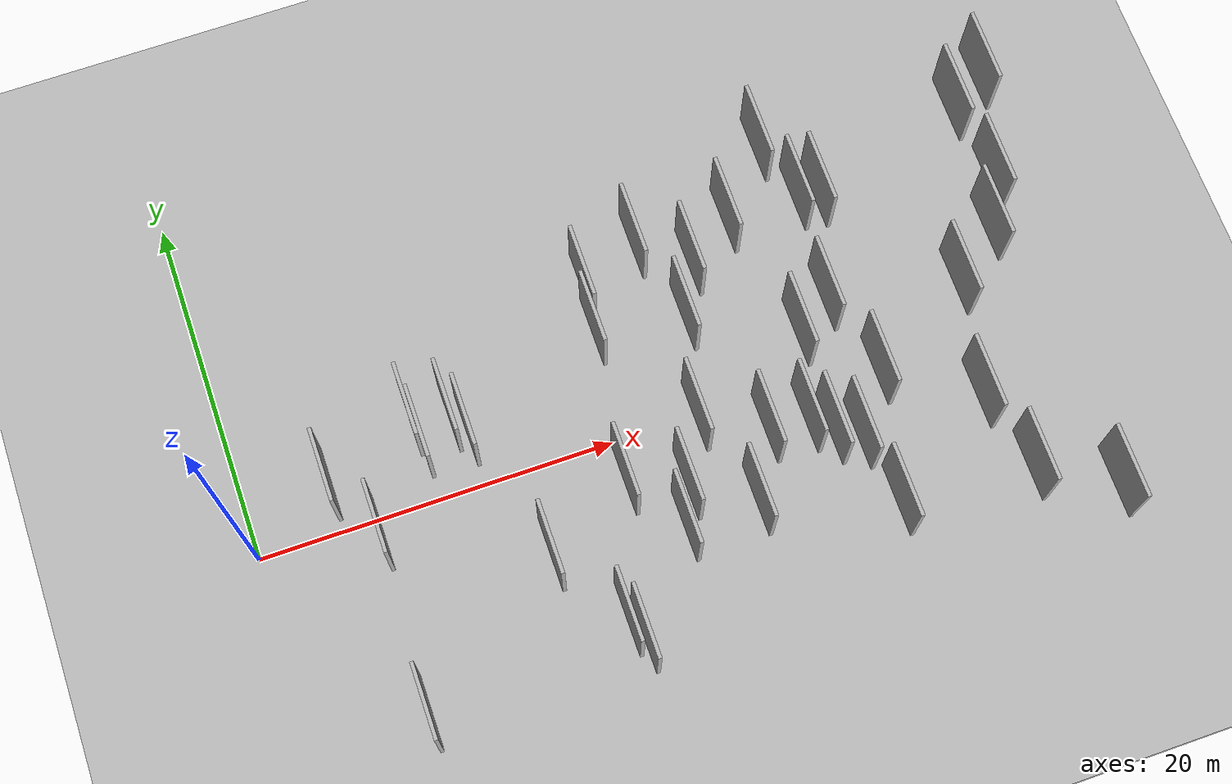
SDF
<?xml version="1.0" encoding="utf-8"?>

<sdf version="1.6">

   <world name="default">

      <gui fullscreen="0">

         <camera name="user_camera">

            <pose>-15 0 4.57585 0 0 0</pose>

            <view_controller>orbit</view_controller>

         </camera>

      </gui>

      <scene>

         <sky>

           <clouds>

             <speed>12</speed>

           </clouds>

         </sky>

         <ambient>0.4 0.4 0.4 1</ambient>

         <background>0.7 0.7 0.7 1</background>

         <shadows>1</shadows>

      </scene>

      <gravity>0 0 -9.8066</gravity>

      <magnetic_field>6e-06 2.3e-05 -4.2e-05</magnetic_field>

      <physics default="0" name="default_physics" type="ode">

         <ode>

            <solver>

               <type>quick</type>

               <iters>10</iters>

               <sor>1.0</sor>

               <use_dynamic_moi_rescaling>0</use_dynamic_moi_rescaling>

            </solver>

            <constraints>

               <cfm>0</cfm>

               <erp>0.2</erp>

               <contact_max_correcting_vel>100</contact_max_correcting_vel>

               <contact_surface_layer>0.001</contact_surface_layer>

            </constraints>

         </ode>

         <max_step_size>0.004</max_step_size>

         <real_time_factor>1</real_time_factor>

         <real_time_update_rate>250</real_time_update_rate>

      </physics>

      <light name="sun" type="directional">

         <cast_shadows>1</cast_shadows>

         <pose>0 0 10 0 0 0</pose>

         <diffuse>0.8 0.8 0.8 1</diffuse>

         <specular>0.2 0.2 0.2 1</specular>

         <attenuation>

            <range>1000</range>

            <constant>0.9</constant>

            <linear>0.01</linear>

            <quadratic>0.001</quadratic>

         </attenuation>

         <direction>-0.5 0.1 -0.9</direction>

      </light>

      <include>

         <name>ground_plane_1</name>

         <uri>model://HANNAS_ground_plane</uri>

         <pose>0 0 0  0 0 0</pose>

      </include>

      <include>

         <name>ground_plane_2</name>

         <uri>model://HANNAS_ground_plane</uri>

         <pose>100 0 0  0 0 0</pose>

      </include>

      <model name="HANNAS_wall_1">

         <static>1</static>

         <pose frame="">17.2361 -10.4569 5.0 0.000000 0.000000 1.570796</pose>

         <link name="link">

            <pose frame="">0 0 2.00 0 0 0</pose>

            <collision name="collision">

               <geometry>

                  <box>

                     <size>4.00 0.2 4.00</size>

                  </box>

               </geometry>

               <max_contacts>10</max_contacts>

               <surface>

                  <contact>

                     <ode/>

                  </contact>

                  <bounce/>

                  <friction>

                     <torsional>

                        <ode/>

                     </torsional>

                     <ode/>

                  </friction>

               </surface>

            </collision>

            <visual name="visual">

               <cast_shadows>0</cast_shadows>

               <geometry>

                  <box>

                     <size>4.00 0.2 4.00</size>

                  </box>

               </geometry>

               <material>

                  <script>

                     <uri>model://HANNAS_wall/materials/scripts</uri>

                     <uri>model://HANNAS_wall/materials/textures</uri>

                     <name>vrc/HANNAS_wall</name>

                  </script>

               </material>

            </visual>

            <self_collide>0</self_collide>

            <enable_wind>0</enable_wind>

            <kinematic>0</kinematic>

         </link>

      </model>

      <model name="HANNAS_wall_2">

         <static>1</static>

         <pose frame="">6.7649 -2.1725 5.0 0.000000 0.000000 1.570796</pose>

         <link name="link">

            <pose frame="">0 0 2.00 0 0 0</pose>

            <collision name="collision">

               <geometry>

                  <box>

                     <size>4.00 0.2 4.00</size>

                  </box>

               </geometry>

               <max_contacts>10</max_contacts>

               <surface>

                  <contact>

                     <ode/>

                  </contact>

                  <bounce/>

                  <friction>

                     <torsional>

                        <ode/>

                     </torsional>

                     <ode/>

                  </friction>

               </surface>

            </collision>

            <visual name="visual">

               <cast_shadows>0</cast_shadows>

               <geometry>

                  <box>

                     <size>4.00 0.2 4.00</size>

                  </box>

               </geometry>

               <material>

                  <script>

                     <uri>model://HANNAS_wall/materials/scripts</uri>

                     <uri>model://HANNAS_wall/materials/textures</uri>

                     <name>vrc/HANNAS_wall</name>

                  </script>

               </material>

            </visual>

            <self_collide>0</self_collide>

            <enable_wind>0</enable_wind>

            <kinematic>0</kinematic>

         </link>

      </model>

      <model name="HANNAS_wall_3">

         <static>1</static>

         <pose frame="">34.4605 8.2708 5.0 0.000000 0.000000 1.570796</pose>

         <link name="link">

            <pose frame="">0 0 2.00 0 0 0</pose>

            <collision name="collision">

               <geometry>

                  <box>

                     <size>4.00 0.2 4.00</size>

                  </box>

               </geometry>

               <max_contacts>10</max_contacts>

               <surface>

                  <contact>

                     <ode/>

                  </contact>

                  <bounce/>

                  <friction>

                     <torsional>

                        <ode/>

                     </torsional>

                     <ode/>

                  </friction>

               </surface>

            </collision>

            <visual name="visual">

               <cast_shadows>0</cast_shadows>

               <geometry>

                  <box>

                     <size>4.00 0.2 4.00</size>

                  </box>

               </geometry>

               <material>

                  <script>

                     <uri>model://HANNAS_wall/materials/scripts</uri>

                     <uri>model://HANNAS_wall/materials/textures</uri>

                     <name>vrc/HANNAS_wall</name>

                  </script>

               </material>

            </visual>

            <self_collide>0</self_collide>

            <enable_wind>0</enable_wind>

            <kinematic>0</kinematic>

         </link>

      </model>

      <model name="HANNAS_wall_4">

         <static>1</static>

         <pose frame="">20.5544 4.7622 5.0 0.000000 0.000000 1.570796</pose>

         <link name="link">

            <pose frame="">0 0 2.00 0 0 0</pose>

            <collision name="collision">

               <geometry>

                  <box>

                     <size>4.00 0.2 4.00</size>

                  </box>

               </geometry>

               <max_contacts>10</max_contacts>

               <surface>

                  <contact>

                     <ode/>

                  </contact>

                  <bounce/>

                  <friction>

                     <torsional>

                        <ode/>

                     </torsional>

                     <ode/>

                  </friction>

               </surface>

            </collision>

            <visual name="visual">

               <cast_shadows>0</cast_shadows>

               <geometry>

                  <box>

                     <size>4.00 0.2 4.00</size>

                  </box>

               </geometry>

               <material>

                  <script>

                     <uri>model://HANNAS_wall/materials/scripts</uri>

                     <uri>model://HANNAS_wall/materials/textures</uri>

                     <name>vrc/HANNAS_wall</name>

                  </script>

               </material>

            </visual>

            <self_collide>0</self_collide>

            <enable_wind>0</enable_wind>

            <kinematic>0</kinematic>

         </link>

      </model>

      <model name="HANNAS_wall_5">

         <static>1</static>

         <pose frame="">21.5974 -6.7855 5.0 0.000000 0.000000 1.570796</pose>

         <link name="link">

            <pose frame="">0 0 2.00 0 0 0</pose>

            <collision name="collision">

               <geometry>

                  <box>

                     <size>4.00 0.2 4.00</size>

                  </box>

               </geometry>

               <max_contacts>10</max_contacts>

               <surface>

                  <contact>

                     <ode/>

                  </contact>

                  <bounce/>

                  <friction>

                     <torsional>

                        <ode/>

                     </torsional>

                     <ode/>

                  </friction>

               </surface>

            </collision>

            <visual name="visual">

               <cast_shadows>0</cast_shadows>

               <geometry>

                  <box>

                     <size>4.00 0.2 4.00</size>

                  </box>

               </geometry>

               <material>

                  <script>

                     <uri>model://HANNAS_wall/materials/scripts</uri>

                     <uri>model://HANNAS_wall/materials/textures</uri>

                     <name>vrc/HANNAS_wall</name>

                  </script>

               </material>

            </visual>

            <self_collide>0</self_collide>

            <enable_wind>0</enable_wind>

            <kinematic>0</kinematic>

         </link>

      </model>

      <model name="HANNAS_wall_6">

         <static>1</static>

         <pose frame="">33.9064 -2.1469 5.0 0.000000 0.000000 1.570796</pose>

         <link name="link">

            <pose frame="">0 0 2.00 0 0 0</pose>

            <collision name="collision">

               <geometry>

                  <box>

                     <size>4.00 0.2 4.00</size>

                  </box>

               </geometry>

               <max_contacts>10</max_contacts>

               <surface>

                  <contact>

                     <ode/>

                  </contact>

                  <bounce/>

                  <friction>

                     <torsional>

                        <ode/>

                     </torsional>

                     <ode/>

                  </friction>

               </surface>

            </collision>

            <visual name="visual">

               <cast_shadows>0</cast_shadows>

               <geometry>

                  <box>

                     <size>4.00 0.2 4.00</size>

                  </box>

               </geometry>

               <material>

                  <script>

                     <uri>model://HANNAS_wall/materials/scripts</uri>

                     <uri>model://HANNAS_wall/materials/textures</uri>

                     <name>vrc/HANNAS_wall</name>

                  </script>

               </material>

            </visual>

            <self_collide>0</self_collide>

            <enable_wind>0</enable_wind>

            <kinematic>0</kinematic>

         </link>

      </model>

      <model name="HANNAS_wall_7">

         <static>1</static>

         <pose frame="">42.4745 3.4765 5.0 0.000000 0.000000 1.570796</pose>

         <link name="link">

            <pose frame="">0 0 2.00 0 0 0</pose>

            <collision name="collision">

               <geometry>

                  <box>

                     <size>4.00 0.2 4.00</size>

                  </box>

               </geometry>

               <max_contacts>10</max_contacts>

               <surface>

                  <contact>

                     <ode/>

                  </contact>

                  <bounce/>

                  <friction>

                     <torsional>

                        <ode/>

                     </torsional>

                     <ode/>

                  </friction>

               </surface>

            </collision>

            <visual name="visual">

               <cast_shadows>0</cast_shadows>

               <geometry>

                  <box>

                     <size>4.00 0.2 4.00</size>

                  </box>

               </geometry>

               <material>

                  <script>

                     <uri>model://HANNAS_wall/materials/scripts</uri>

                     <uri>model://HANNAS_wall/materials/textures</uri>

                     <name>vrc/HANNAS_wall</name>

                  </script>

               </material>

            </visual>

            <self_collide>0</self_collide>

            <enable_wind>0</enable_wind>

            <kinematic>0</kinematic>

         </link>

      </model>

      <model name="HANNAS_wall_8">

         <static>1</static>

         <pose frame="">19.4796 -3.4679 5.0 0.000000 0.000000 1.570796</pose>

         <link name="link">

            <pose frame="">0 0 2.00 0 0 0</pose>

            <collision name="collision">

               <geometry>

                  <box>

                     <size>4.00 0.2 4.00</size>

                  </box>

               </geometry>

               <max_contacts>10</max_contacts>

               <surface>

                  <contact>

                     <ode/>

                  </contact>

                  <bounce/>

                  <friction>

                     <torsional>

                        <ode/>

                     </torsional>

                     <ode/>

                  </friction>

               </surface>

            </collision>

            <visual name="visual">

               <cast_shadows>0</cast_shadows>

               <geometry>

                  <box>

                     <size>4.00 0.2 4.00</size>

                  </box>

               </geometry>

               <material>

                  <script>

                     <uri>model://HANNAS_wall/materials/scripts</uri>

                     <uri>model://HANNAS_wall/materials/textures</uri>

                     <name>vrc/HANNAS_wall</name>

                  </script>

               </material>

            </visual>

            <self_collide>0</self_collide>

            <enable_wind>0</enable_wind>

            <kinematic>0</kinematic>

         </link>

      </model>

      <model name="HANNAS_wall_9">

         <static>1</static>

         <pose frame="">10.1993 1.8359 5.0 0.000000 0.000000 1.570796</pose>

         <link name="link">

            <pose frame="">0 0 2.00 0 0 0</pose>

            <collision name="collision">

               <geometry>

                  <box>

                     <size>4.00 0.2 4.00</size>

                  </box>

               </geometry>

               <max_contacts>10</max_contacts>

               <surface>

                  <contact>

                     <ode/>

                  </contact>

                  <bounce/>

                  <friction>

                     <torsional>

                        <ode/>

                     </torsional>

                     <ode/>

                  </friction>

               </surface>

            </collision>

            <visual name="visual">

               <cast_shadows>0</cast_shadows>

               <geometry>

                  <box>

                     <size>4.00 0.2 4.00</size>

                  </box>

               </geometry>

               <material>

                  <script>

                     <uri>model://HANNAS_wall/materials/scripts</uri>

                     <uri>model://HANNAS_wall/materials/textures</uri>

                     <name>vrc/HANNAS_wall</name>

                  </script>

               </material>

            </visual>

            <self_collide>0</self_collide>

            <enable_wind>0</enable_wind>

            <kinematic>0</kinematic>

         </link>

      </model>

      <model name="HANNAS_wall_10">

         <static>1</static>

         <pose frame="">32.7264 2.5821 5.0 0.000000 0.000000 1.570796</pose>

         <link name="link">

            <pose frame="">0 0 2.00 0 0 0</pose>

            <collision name="collision">

               <geometry>

                  <box>

                     <size>4.00 0.2 4.00</size>

                  </box>

               </geometry>

               <max_contacts>10</max_contacts>

               <surface>

                  <contact>

                     <ode/>

                  </contact>

                  <bounce/>

                  <friction>

                     <torsional>

                        <ode/>

                     </torsional>

                     <ode/>

                  </friction>

               </surface>

            </collision>

            <visual name="visual">

               <cast_shadows>0</cast_shadows>

               <geometry>

                  <box>

                     <size>4.00 0.2 4.00</size>

                  </box>

               </geometry>

               <material>

                  <script>

                     <uri>model://HANNAS_wall/materials/scripts</uri>

                     <uri>model://HANNAS_wall/materials/textures</uri>

                     <name>vrc/HANNAS_wall</name>

                  </script>

               </material>

            </visual>

            <self_collide>0</self_collide>

            <enable_wind>0</enable_wind>

            <kinematic>0</kinematic>

         </link>

      </model>

      <model name="HANNAS_wall_11">

         <static>1</static>

         <pose frame="">43.6967 6.1775 5.0 0.000000 0.000000 1.570796</pose>

         <link name="link">

            <pose frame="">0 0 2.00 0 0 0</pose>

            <collision name="collision">

               <geometry>

                  <box>

                     <size>4.00 0.2 4.00</size>

                  </box>

               </geometry>

               <max_contacts>10</max_contacts>

               <surface>

                  <contact>

                     <ode/>

                  </contact>

                  <bounce/>

                  <friction>

                     <torsional>

                        <ode/>

                     </torsional>

                     <ode/>

                  </friction>

               </surface>

            </collision>

            <visual name="visual">

               <cast_shadows>0</cast_shadows>

               <geometry>

                  <box>

                     <size>4.00 0.2 4.00</size>

                  </box>

               </geometry>

               <material>

                  <script>

                     <uri>model://HANNAS_wall/materials/scripts</uri>

                     <uri>model://HANNAS_wall/materials/textures</uri>

                     <name>vrc/HANNAS_wall</name>

                  </script>

               </material>

            </visual>

            <self_collide>0</self_collide>

            <enable_wind>0</enable_wind>

            <kinematic>0</kinematic>

         </link>

      </model>

      <model name="HANNAS_wall_12">

         <static>1</static>

         <pose frame="">11.9559 2.7120 5.0 0.000000 0.000000 1.570796</pose>

         <link name="link">

            <pose frame="">0 0 2.00 0 0 0</pose>

            <collision name="collision">

               <geometry>

                  <box>

                     <size>4.00 0.2 4.00</size>

                  </box>

               </geometry>

               <max_contacts>10</max_contacts>

               <surface>

                  <contact>

                     <ode/>

                  </contact>

                  <bounce/>

                  <friction>

                     <torsional>

                        <ode/>

                     </torsional>

                     <ode/>

                  </friction>

               </surface>

            </collision>

            <visual name="visual">

               <cast_shadows>0</cast_shadows>

               <geometry>

                  <box>

                     <size>4.00 0.2 4.00</size>

                  </box>

               </geometry>

               <material>

                  <script>

                     <uri>model://HANNAS_wall/materials/scripts</uri>

                     <uri>model://HANNAS_wall/materials/textures</uri>

                     <name>vrc/HANNAS_wall</name>

                  </script>

               </material>

            </visual>

            <self_collide>0</self_collide>

            <enable_wind>0</enable_wind>

            <kinematic>0</kinematic>

         </link>

      </model>

      <model name="HANNAS_wall_13">

         <static>1</static>

         <pose frame="">33.3081 8.4916 5.0 0.000000 0.000000 1.570796</pose>

         <link name="link">

            <pose frame="">0 0 2.00 0 0 0</pose>

            <collision name="collision">

               <geometry>

                  <box>

                     <size>4.00 0.2 4.00</size>

                  </box>

               </geometry>

               <max_contacts>10</max_contacts>

               <surface>

                  <contact>

                     <ode/>

                  </contact>

                  <bounce/>

                  <friction>

                     <torsional>

                        <ode/>

                     </torsional>

                     <ode/>

                  </friction>

               </surface>

            </collision>

            <visual name="visual">

               <cast_shadows>0</cast_shadows>

               <geometry>

                  <box>

                     <size>4.00 0.2 4.00</size>

                  </box>

               </geometry>

               <material>

                  <script>

                     <uri>model://HANNAS_wall/materials/scripts</uri>

                     <uri>model://HANNAS_wall/materials/textures</uri>

                     <name>vrc/HANNAS_wall</name>

                  </script>

               </material>

            </visual>

            <self_collide>0</self_collide>

            <enable_wind>0</enable_wind>

            <kinematic>0</kinematic>

         </link>

      </model>

      <model name="HANNAS_wall_14">

         <static>1</static>

         <pose frame="">24.1334 8.6971 5.0 0.000000 0.000000 1.570796</pose>

         <link name="link">

            <pose frame="">0 0 2.00 0 0 0</pose>

            <collision name="collision">

               <geometry>

                  <box>

                     <size>4.00 0.2 4.00</size>

                  </box>

               </geometry>

               <max_contacts>10</max_contacts>

               <surface>

                  <contact>

                     <ode/>

                  </contact>

                  <bounce/>

                  <friction>

                     <torsional>

                        <ode/>

                     </torsional>

                     <ode/>

                  </friction>

               </surface>

            </collision>

            <visual name="visual">

               <cast_shadows>0</cast_shadows>

               <geometry>

                  <box>

                     <size>4.00 0.2 4.00</size>

                  </box>

               </geometry>

               <material>

                  <script>

                     <uri>model://HANNAS_wall/materials/scripts</uri>

                     <uri>model://HANNAS_wall/materials/textures</uri>

                     <name>vrc/HANNAS_wall</name>

                  </script>

               </material>

            </visual>

            <self_collide>0</self_collide>

            <enable_wind>0</enable_wind>

            <kinematic>0</kinematic>

         </link>

      </model>

      <model name="HANNAS_wall_15">

         <static>1</static>

         <pose frame="">32.3767 -9.0726 5.0 0.000000 0.000000 1.570796</pose>

         <link name="link">

            <pose frame="">0 0 2.00 0 0 0</pose>

            <collision name="collision">

               <geometry>

                  <box>

                     <size>4.00 0.2 4.00</size>

                  </box>

               </geometry>

               <max_contacts>10</max_contacts>

               <surface>

                  <contact>

                     <ode/>

                  </contact>

                  <bounce/>

                  <friction>

                     <torsional>

                        <ode/>

                     </torsional>

                     <ode/>

                  </friction>

               </surface>

            </collision>

            <visual name="visual">

               <cast_shadows>0</cast_shadows>

               <geometry>

                  <box>

                     <size>4.00 0.2 4.00</size>

                  </box>

               </geometry>

               <material>

                  <script>

                     <uri>model://HANNAS_wall/materials/scripts</uri>

                     <uri>model://HANNAS_wall/materials/textures</uri>

                     <name>vrc/HANNAS_wall</name>

                  </script>

               </material>

            </visual>

            <self_collide>0</self_collide>

            <enable_wind>0</enable_wind>

            <kinematic>0</kinematic>

         </link>

      </model>

      <model name="HANNAS_wall_16">

         <static>1</static>

         <pose frame="">43.3508 -11.8342 5.0 0.000000 0.000000 1.570796</pose>

         <link name="link">

            <pose frame="">0 0 2.00 0 0 0</pose>

            <collision name="collision">

               <geometry>

                  <box>

                     <size>4.00 0.2 4.00</size>

                  </box>

               </geometry>

               <max_contacts>10</max_contacts>

               <surface>

                  <contact>

                     <ode/>

                  </contact>

                  <bounce/>

                  <friction>

                     <torsional>

                        <ode/>

                     </torsional>

                     <ode/>

                  </friction>

               </surface>

            </collision>

            <visual name="visual">

               <cast_shadows>0</cast_shadows>

               <geometry>

                  <box>

                     <size>4.00 0.2 4.00</size>

                  </box>

               </geometry>

               <material>

                  <script>

                     <uri>model://HANNAS_wall/materials/scripts</uri>

                     <uri>model://HANNAS_wall/materials/textures</uri>

                     <name>vrc/HANNAS_wall</name>

                  </script>

               </material>

            </visual>

            <self_collide>0</self_collide>

            <enable_wind>0</enable_wind>

            <kinematic>0</kinematic>

         </link>

      </model>

      <model name="HANNAS_wall_17">

         <static>1</static>

         <pose frame="">9.9884 3.1541 5.0 0.000000 0.000000 1.570796</pose>

         <link name="link">

            <pose frame="">0 0 2.00 0 0 0</pose>

            <collision name="collision">

               <geometry>

                  <box>

                     <size>4.00 0.2 4.00</size>

                  </box>

               </geometry>

               <max_contacts>10</max_contacts>

               <surface>

                  <contact>

                     <ode/>

                  </contact>

                  <bounce/>

                  <friction>

                     <torsional>

                        <ode/>

                     </torsional>

                     <ode/>

                  </friction>

               </surface>

            </collision>

            <visual name="visual">

               <cast_shadows>0</cast_shadows>

               <geometry>

                  <box>

                     <size>4.00 0.2 4.00</size>

                  </box>

               </geometry>

               <material>

                  <script>

                     <uri>model://HANNAS_wall/materials/scripts</uri>

                     <uri>model://HANNAS_wall/materials/textures</uri>

                     <name>vrc/HANNAS_wall</name>

                  </script>

               </material>

            </visual>

            <self_collide>0</self_collide>

            <enable_wind>0</enable_wind>

            <kinematic>0</kinematic>

         </link>

      </model>

      <model name="HANNAS_wall_18">

         <static>1</static>

         <pose frame="">26.6652 6.7905 5.0 0.000000 0.000000 1.570796</pose>

         <link name="link">

            <pose frame="">0 0 2.00 0 0 0</pose>

            <collision name="collision">

               <geometry>

                  <box>

                     <size>4.00 0.2 4.00</size>

                  </box>

               </geometry>

               <max_contacts>10</max_contacts>

               <surface>

                  <contact>

                     <ode/>

                  </contact>

                  <bounce/>

                  <friction>

                     <torsional>

                        <ode/>

                     </torsional>

                     <ode/>

                  </friction>

               </surface>

            </collision>

            <visual name="visual">

               <cast_shadows>0</cast_shadows>

               <geometry>

                  <box>

                     <size>4.00 0.2 4.00</size>

                  </box>

               </geometry>

               <material>

                  <script>

                     <uri>model://HANNAS_wall/materials/scripts</uri>

                     <uri>model://HANNAS_wall/materials/textures</uri>

                     <name>vrc/HANNAS_wall</name>

                  </script>

               </material>

            </visual>

            <self_collide>0</self_collide>

            <enable_wind>0</enable_wind>

            <kinematic>0</kinematic>

         </link>

      </model>

      <model name="HANNAS_wall_19">

         <static>1</static>

         <pose frame="">14.6474 -6.0128 5.0 0.000000 0.000000 1.570796</pose>

         <link name="link">

            <pose frame="">0 0 2.00 0 0 0</pose>

            <collision name="collision">

               <geometry>

                  <box>

                     <size>4.00 0.2 4.00</size>

                  </box>

               </geometry>

               <max_contacts>10</max_contacts>

               <surface>

                  <contact>

                     <ode/>

                  </contact>

                  <bounce/>

                  <friction>

                     <torsional>

                        <ode/>

                     </torsional>

                     <ode/>

                  </friction>

               </surface>

            </collision>

            <visual name="visual">

               <cast_shadows>0</cast_shadows>

               <geometry>

                  <box>

                     <size>4.00 0.2 4.00</size>

                  </box>

               </geometry>

               <material>

                  <script>

                     <uri>model://HANNAS_wall/materials/scripts</uri>

                     <uri>model://HANNAS_wall/materials/textures</uri>

                     <name>vrc/HANNAS_wall</name>

                  </script>

               </material>

            </visual>

            <self_collide>0</self_collide>

            <enable_wind>0</enable_wind>

            <kinematic>0</kinematic>

         </link>

      </model>

      <model name="HANNAS_wall_20">

         <static>1</static>

         <pose frame="">12.5976 1.6681 5.0 0.000000 0.000000 1.570796</pose>

         <link name="link">

            <pose frame="">0 0 2.00 0 0 0</pose>

            <collision name="collision">

               <geometry>

                  <box>

                     <size>4.00 0.2 4.00</size>

                  </box>

               </geometry>

               <max_contacts>10</max_contacts>

               <surface>

                  <contact>

                     <ode/>

                  </contact>

                  <bounce/>

                  <friction>

                     <torsional>

                        <ode/>

                     </torsional>

                     <ode/>

                  </friction>

               </surface>

            </collision>

            <visual name="visual">

               <cast_shadows>0</cast_shadows>

               <geometry>

                  <box>

                     <size>4.00 0.2 4.00</size>

                  </box>

               </geometry>

               <material>

                  <script>

                     <uri>model://HANNAS_wall/materials/scripts</uri>

                     <uri>model://HANNAS_wall/materials/textures</uri>

                     <name>vrc/HANNAS_wall</name>

                  </script>

               </material>

            </visual>

            <self_collide>0</self_collide>

            <enable_wind>0</enable_wind>

            <kinematic>0</kinematic>

         </link>

      </model>

      <model name="HANNAS_wall_21">

         <static>1</static>

         <pose frame="">31.7583 -5.1412 5.0 0.000000 0.000000 1.570796</pose>

         <link name="link">

            <pose frame="">0 0 2.00 0 0 0</pose>

            <collision name="collision">

               <geometry>

                  <box>

                     <size>4.00 0.2 4.00</size>

                  </box>

               </geometry>

               <max_contacts>10</max_contacts>

               <surface>

                  <contact>

                     <ode/>

                  </contact>

                  <bounce/>

                  <friction>

                     <torsional>

                        <ode/>

                     </torsional>

                     <ode/>

                  </friction>

               </surface>

            </collision>

            <visual name="visual">

               <cast_shadows>0</cast_shadows>

               <geometry>

                  <box>

                     <size>4.00 0.2 4.00</size>

                  </box>

               </geometry>

               <material>

                  <script>

                     <uri>model://HANNAS_wall/materials/scripts</uri>

                     <uri>model://HANNAS_wall/materials/textures</uri>

                     <name>vrc/HANNAS_wall</name>

                  </script>

               </material>

            </visual>

            <self_collide>0</self_collide>

            <enable_wind>0</enable_wind>

            <kinematic>0</kinematic>

         </link>

      </model>

      <model name="HANNAS_wall_22">

         <static>1</static>

         <pose frame="">25.5442 -6.7120 5.0 0.000000 0.000000 1.570796</pose>

         <link name="link">

            <pose frame="">0 0 2.00 0 0 0</pose>

            <collision name="collision">

               <geometry>

                  <box>

                     <size>4.00 0.2 4.00</size>

                  </box>

               </geometry>

               <max_contacts>10</max_contacts>

               <surface>

                  <contact>

                     <ode/>

                  </contact>

                  <bounce/>

                  <friction>

                     <torsional>

                        <ode/>

                     </torsional>

                     <ode/>

                  </friction>

               </surface>

            </collision>

            <visual name="visual">

               <cast_shadows>0</cast_shadows>

               <geometry>

                  <box>

                     <size>4.00 0.2 4.00</size>

                  </box>

               </geometry>

               <material>

                  <script>

                     <uri>model://HANNAS_wall/materials/scripts</uri>

                     <uri>model://HANNAS_wall/materials/textures</uri>

                     <name>vrc/HANNAS_wall</name>

                  </script>

               </material>

            </visual>

            <self_collide>0</self_collide>

            <enable_wind>0</enable_wind>

            <kinematic>0</kinematic>

         </link>

      </model>

      <model name="HANNAS_wall_23">

         <static>1</static>

         <pose frame="">27.3213 -3.2450 5.0 0.000000 0.000000 1.570796</pose>

         <link name="link">

            <pose frame="">0 0 2.00 0 0 0</pose>

            <collision name="collision">

               <geometry>

                  <box>

                     <size>4.00 0.2 4.00</size>

                  </box>

               </geometry>

               <max_contacts>10</max_contacts>

               <surface>

                  <contact>

                     <ode/>

                  </contact>

                  <bounce/>

                  <friction>

                     <torsional>

                        <ode/>

                     </torsional>

                     <ode/>

                  </friction>

               </surface>

            </collision>

            <visual name="visual">

               <cast_shadows>0</cast_shadows>

               <geometry>

                  <box>

                     <size>4.00 0.2 4.00</size>

                  </box>

               </geometry>

               <material>

                  <script>

                     <uri>model://HANNAS_wall/materials/scripts</uri>

                     <uri>model://HANNAS_wall/materials/textures</uri>

                     <name>vrc/HANNAS_wall</name>

                  </script>

               </material>

            </visual>

            <self_collide>0</self_collide>

            <enable_wind>0</enable_wind>

            <kinematic>0</kinematic>

         </link>

      </model>

      <model name="HANNAS_wall_24">

         <static>1</static>

         <pose frame="">24.0750 -1.4555 5.0 0.000000 0.000000 1.570796</pose>

         <link name="link">

            <pose frame="">0 0 2.00 0 0 0</pose>

            <collision name="collision">

               <geometry>

                  <box>

                     <size>4.00 0.2 4.00</size>

                  </box>

               </geometry>

               <max_contacts>10</max_contacts>

               <surface>

                  <contact>

                     <ode/>

                  </contact>

                  <bounce/>

                  <friction>

                     <torsional>

                        <ode/>

                     </torsional>

                     <ode/>

                  </friction>

               </surface>

            </collision>

            <visual name="visual">

               <cast_shadows>0</cast_shadows>

               <geometry>

                  <box>

                     <size>4.00 0.2 4.00</size>

                  </box>

               </geometry>

               <material>

                  <script>

                     <uri>model://HANNAS_wall/materials/scripts</uri>

                     <uri>model://HANNAS_wall/materials/textures</uri>

                     <name>vrc/HANNAS_wall</name>

                  </script>

               </material>

            </visual>

            <self_collide>0</self_collide>

            <enable_wind>0</enable_wind>

            <kinematic>0</kinematic>

         </link>

      </model>

      <model name="HANNAS_wall_25">

         <static>1</static>

         <pose frame="">43.1770 10.6793 5.0 0.000000 0.000000 1.570796</pose>

         <link name="link">

            <pose frame="">0 0 2.00 0 0 0</pose>

            <collision name="collision">

               <geometry>

                  <box>

                     <size>4.00 0.2 4.00</size>

                  </box>

               </geometry>

               <max_contacts>10</max_contacts>

               <surface>

                  <contact>

                     <ode/>

                  </contact>

                  <bounce/>

                  <friction>

                     <torsional>

                        <ode/>

                     </torsional>

                     <ode/>

                  </friction>

               </surface>

            </collision>

            <visual name="visual">

               <cast_shadows>0</cast_shadows>

               <geometry>

                  <box>

                     <size>4.00 0.2 4.00</size>

                  </box>

               </geometry>

               <material>

                  <script>

                     <uri>model://HANNAS_wall/materials/scripts</uri>

                     <uri>model://HANNAS_wall/materials/textures</uri>

                     <name>vrc/HANNAS_wall</name>

                  </script>

               </material>

            </visual>

            <self_collide>0</self_collide>

            <enable_wind>0</enable_wind>

            <kinematic>0</kinematic>

         </link>

      </model>

      <model name="HANNAS_wall_26">

         <static>1</static>

         <pose frame="">39.5034 -9.5639 5.0 0.000000 0.000000 1.570796</pose>

         <link name="link">

            <pose frame="">0 0 2.00 0 0 0</pose>

            <collision name="collision">

               <geometry>

                  <box>

                     <size>4.00 0.2 4.00</size>

                  </box>

               </geometry>

               <max_contacts>10</max_contacts>

               <surface>

                  <contact>

                     <ode/>

                  </contact>

                  <bounce/>

                  <friction>

                     <torsional>

                        <ode/>

                     </torsional>

                     <ode/>

                  </friction>

               </surface>

            </collision>

            <visual name="visual">

               <cast_shadows>0</cast_shadows>

               <geometry>

                  <box>

                     <size>4.00 0.2 4.00</size>

                  </box>

               </geometry>

               <material>

                  <script>

                     <uri>model://HANNAS_wall/materials/scripts</uri>

                     <uri>model://HANNAS_wall/materials/textures</uri>

                     <name>vrc/HANNAS_wall</name>

                  </script>

               </material>

            </visual>

            <self_collide>0</self_collide>

            <enable_wind>0</enable_wind>

            <kinematic>0</kinematic>

         </link>

      </model>

      <model name="HANNAS_wall_27">

         <static>1</static>

         <pose frame="">38.4764 -5.0982 5.0 0.000000 0.000000 1.570796</pose>

         <link name="link">

            <pose frame="">0 0 2.00 0 0 0</pose>

            <collision name="collision">

               <geometry>

                  <box>

                     <size>4.00 0.2 4.00</size>

                  </box>

               </geometry>

               <max_contacts>10</max_contacts>

               <surface>

                  <contact>

                     <ode/>

                  </contact>

                  <bounce/>

                  <friction>

                     <torsional>

                        <ode/>

                     </torsional>

                     <ode/>

                  </friction>

               </surface>

            </collision>

            <visual name="visual">

               <cast_shadows>0</cast_shadows>

               <geometry>

                  <box>

                     <size>4.00 0.2 4.00</size>

                  </box>

               </geometry>

               <material>

                  <script>

                     <uri>model://HANNAS_wall/materials/scripts</uri>

                     <uri>model://HANNAS_wall/materials/textures</uri>

                     <name>vrc/HANNAS_wall</name>

                  </script>

               </material>

            </visual>

            <self_collide>0</self_collide>

            <enable_wind>0</enable_wind>

            <kinematic>0</kinematic>

         </link>

      </model>

      <model name="HANNAS_wall_28">

         <static>1</static>

         <pose frame="">22.4128 -4.7541 5.0 0.000000 0.000000 1.570796</pose>

         <link name="link">

            <pose frame="">0 0 2.00 0 0 0</pose>

            <collision name="collision">

               <geometry>

                  <box>

                     <size>4.00 0.2 4.00</size>

                  </box>

               </geometry>

               <max_contacts>10</max_contacts>

               <surface>

                  <contact>

                     <ode/>

                  </contact>

                  <bounce/>

                  <friction>

                     <torsional>

                        <ode/>

                     </torsional>

                     <ode/>

                  </friction>

               </surface>

            </collision>

            <visual name="visual">

               <cast_shadows>0</cast_shadows>

               <geometry>

                  <box>

                     <size>4.00 0.2 4.00</size>

                  </box>

               </geometry>

               <material>

                  <script>

                     <uri>model://HANNAS_wall/materials/scripts</uri>

                     <uri>model://HANNAS_wall/materials/textures</uri>

                     <name>vrc/HANNAS_wall</name>

                  </script>

               </material>

            </visual>

            <self_collide>0</self_collide>

            <enable_wind>0</enable_wind>

            <kinematic>0</kinematic>

         </link>

      </model>

      <model name="HANNAS_wall_29">

         <static>1</static>

         <pose frame="">29.4903 -3.3933 5.0 0.000000 0.000000 1.570796</pose>

         <link name="link">

            <pose frame="">0 0 2.00 0 0 0</pose>

            <collision name="collision">

               <geometry>

                  <box>

                     <size>4.00 0.2 4.00</size>

                  </box>

               </geometry>

               <max_contacts>10</max_contacts>

               <surface>

                  <contact>

                     <ode/>

                  </contact>

                  <bounce/>

                  <friction>

                     <torsional>

                        <ode/>

                     </torsional>

                     <ode/>

                  </friction>

               </surface>

            </collision>

            <visual name="visual">

               <cast_shadows>0</cast_shadows>

               <geometry>

                  <box>

                     <size>4.00 0.2 4.00</size>

                  </box>

               </geometry>

               <material>

                  <script>

                     <uri>model://HANNAS_wall/materials/scripts</uri>

                     <uri>model://HANNAS_wall/materials/textures</uri>

                     <name>vrc/HANNAS_wall</name>

                  </script>

               </material>

            </visual>

            <self_collide>0</self_collide>

            <enable_wind>0</enable_wind>

            <kinematic>0</kinematic>

         </link>

      </model>

      <model name="HANNAS_wall_30">

         <static>1</static>

         <pose frame="">29.2843 8.4759 5.0 0.000000 0.000000 1.570796</pose>

         <link name="link">

            <pose frame="">0 0 2.00 0 0 0</pose>

            <collision name="collision">

               <geometry>

                  <box>

                     <size>4.00 0.2 4.00</size>

                  </box>

               </geometry>

               <max_contacts>10</max_contacts>

               <surface>

                  <contact>

                     <ode/>

                  </contact>

                  <bounce/>

                  <friction>

                     <torsional>

                        <ode/>

                     </torsional>

                     <ode/>

                  </friction>

               </surface>

            </collision>

            <visual name="visual">

               <cast_shadows>0</cast_shadows>

               <geometry>

                  <box>

                     <size>4.00 0.2 4.00</size>

                  </box>

               </geometry>

               <material>

                  <script>

                     <uri>model://HANNAS_wall/materials/scripts</uri>

                     <uri>model://HANNAS_wall/materials/textures</uri>

                     <name>vrc/HANNAS_wall</name>

                  </script>

               </material>

            </visual>

            <self_collide>0</self_collide>

            <enable_wind>0</enable_wind>

            <kinematic>0</kinematic>

         </link>

      </model>

      <model name="HANNAS_wall_31">

         <static>1</static>

         <pose frame="">39.7167 1.1166 5.0 0.000000 0.000000 1.570796</pose>

         <link name="link">

            <pose frame="">0 0 2.00 0 0 0</pose>

            <collision name="collision">

               <geometry>

                  <box>

                     <size>4.00 0.2 4.00</size>

                  </box>

               </geometry>

               <max_contacts>10</max_contacts>

               <surface>

                  <contact>

                     <ode/>

                  </contact>

                  <bounce/>

                  <friction>

                     <torsional>

                        <ode/>

                     </torsional>

                     <ode/>

                  </friction>

               </surface>

            </collision>

            <visual name="visual">

               <cast_shadows>0</cast_shadows>

               <geometry>

                  <box>

                     <size>4.00 0.2 4.00</size>

                  </box>

               </geometry>

               <material>

                  <script>

                     <uri>model://HANNAS_wall/materials/scripts</uri>

                     <uri>model://HANNAS_wall/materials/textures</uri>

                     <name>vrc/HANNAS_wall</name>

                  </script>

               </material>

            </visual>

            <self_collide>0</self_collide>

            <enable_wind>0</enable_wind>

            <kinematic>0</kinematic>

         </link>

      </model>

      <model name="HANNAS_wall_32">

         <static>1</static>

         <pose frame="">30.4709 -4.4172 5.0 0.000000 0.000000 1.570796</pose>

         <link name="link">

            <pose frame="">0 0 2.00 0 0 0</pose>

            <collision name="collision">

               <geometry>

                  <box>

                     <size>4.00 0.2 4.00</size>

                  </box>

               </geometry>

               <max_contacts>10</max_contacts>

               <surface>

                  <contact>

                     <ode/>

                  </contact>

                  <bounce/>

                  <friction>

                     <torsional>

                        <ode/>

                     </torsional>

                     <ode/>

                  </friction>

               </surface>

            </collision>

            <visual name="visual">

               <cast_shadows>0</cast_shadows>

               <geometry>

                  <box>

                     <size>4.00 0.2 4.00</size>

                  </box>

               </geometry>

               <material>

                  <script>

                     <uri>model://HANNAS_wall/materials/scripts</uri>

                     <uri>model://HANNAS_wall/materials/textures</uri>

                     <name>vrc/HANNAS_wall</name>

                  </script>

               </material>

            </visual>

            <self_collide>0</self_collide>

            <enable_wind>0</enable_wind>

            <kinematic>0</kinematic>

         </link>

      </model>

      <model name="HANNAS_wall_33">

         <static>1</static>

         <pose frame="">6.3491 -11.7191 5.0 0.000000 0.000000 1.570796</pose>

         <link name="link">

            <pose frame="">0 0 2.00 0 0 0</pose>

            <collision name="collision">

               <geometry>

                  <box>

                     <size>4.00 0.2 4.00</size>

                  </box>

               </geometry>

               <max_contacts>10</max_contacts>

               <surface>

                  <contact>

                     <ode/>

                  </contact>

                  <bounce/>

                  <friction>

                     <torsional>

                        <ode/>

                     </torsional>

                     <ode/>

                  </friction>

               </surface>

            </collision>

            <visual name="visual">

               <cast_shadows>0</cast_shadows>

               <geometry>

                  <box>

                     <size>4.00 0.2 4.00</size>

                  </box>

               </geometry>

               <material>

                  <script>

                     <uri>model://HANNAS_wall/materials/scripts</uri>

                     <uri>model://HANNAS_wall/materials/textures</uri>

                     <name>vrc/HANNAS_wall</name>

                  </script>

               </material>

            </visual>

            <self_collide>0</self_collide>

            <enable_wind>0</enable_wind>

            <kinematic>0</kinematic>

         </link>

      </model>

      <model name="HANNAS_wall_34">

         <static>1</static>

         <pose frame="">4.9948 1.2119 5.0 0.000000 0.000000 1.570796</pose>

         <link name="link">

            <pose frame="">0 0 2.00 0 0 0</pose>

            <collision name="collision">

               <geometry>

                  <box>

                     <size>4.00 0.2 4.00</size>

                  </box>

               </geometry>

               <max_contacts>10</max_contacts>

               <surface>

                  <contact>

                     <ode/>

                  </contact>

                  <bounce/>

                  <friction>

                     <torsional>

                        <ode/>

                     </torsional>

                     <ode/>

                  </friction>

               </surface>

            </collision>

            <visual name="visual">

               <cast_shadows>0</cast_shadows>

               <geometry>

                  <box>

                     <size>4.00 0.2 4.00</size>

                  </box>

               </geometry>

               <material>

                  <script>

                     <uri>model://HANNAS_wall/materials/scripts</uri>

                     <uri>model://HANNAS_wall/materials/textures</uri>

                     <name>vrc/HANNAS_wall</name>

                  </script>

               </material>

            </visual>

            <self_collide>0</self_collide>

            <enable_wind>0</enable_wind>

            <kinematic>0</kinematic>

         </link>

      </model>

      <model name="HANNAS_wall_35">

         <static>1</static>

         <pose frame="">17.7409 -11.5150 5.0 0.000000 0.000000 1.570796</pose>

         <link name="link">

            <pose frame="">0 0 2.00 0 0 0</pose>

            <collision name="collision">

               <geometry>

                  <box>

                     <size>4.00 0.2 4.00</size>

                  </box>

               </geometry>

               <max_contacts>10</max_contacts>

               <surface>

                  <contact>

                     <ode/>

                  </contact>

                  <bounce/>

                  <friction>

                     <torsional>

                        <ode/>

                     </torsional>

                     <ode/>

                  </friction>

               </surface>

            </collision>

            <visual name="visual">

               <cast_shadows>0</cast_shadows>

               <geometry>

                  <box>

                     <size>4.00 0.2 4.00</size>

                  </box>

               </geometry>

               <material>

                  <script>

                     <uri>model://HANNAS_wall/materials/scripts</uri>

                     <uri>model://HANNAS_wall/materials/textures</uri>

                     <name>vrc/HANNAS_wall</name>

                  </script>

               </material>

            </visual>

            <self_collide>0</self_collide>

            <enable_wind>0</enable_wind>

            <kinematic>0</kinematic>

         </link>

      </model>

      <model name="HANNAS_wall_36">

         <static>1</static>

         <pose frame="">30.7172 1.1904 5.0 0.000000 0.000000 1.570796</pose>

         <link name="link">

            <pose frame="">0 0 2.00 0 0 0</pose>

            <collision name="collision">

               <geometry>

                  <box>

                     <size>4.00 0.2 4.00</size>

                  </box>

               </geometry>

               <max_contacts>10</max_contacts>

               <surface>

                  <contact>

                     <ode/>

                  </contact>

                  <bounce/>

                  <friction>

                     <torsional>

                        <ode/>

                     </torsional>

                     <ode/>

                  </friction>

               </surface>

            </collision>

            <visual name="visual">

               <cast_shadows>0</cast_shadows>

               <geometry>

                  <box>

                     <size>4.00 0.2 4.00</size>

                  </box>

               </geometry>

               <material>

                  <script>

                     <uri>model://HANNAS_wall/materials/scripts</uri>

                     <uri>model://HANNAS_wall/materials/textures</uri>

                     <name>vrc/HANNAS_wall</name>

                  </script>

               </material>

            </visual>

            <self_collide>0</self_collide>

            <enable_wind>0</enable_wind>

            <kinematic>0</kinematic>

         </link>

      </model>

      <model name="HANNAS_wall_37">

         <static>1</static>

         <pose frame="">20.8407 7.3125 5.0 0.000000 0.000000 1.570796</pose>

         <link name="link">

            <pose frame="">0 0 2.00 0 0 0</pose>

            <collision name="collision">

               <geometry>

                  <box>

                     <size>4.00 0.2 4.00</size>

                  </box>

               </geometry>

               <max_contacts>10</max_contacts>

               <surface>

                  <contact>

                     <ode/>

                  </contact>

                  <bounce/>

                  <friction>

                     <torsional>

                        <ode/>

                     </torsional>

                     <ode/>

                  </friction>

               </surface>

            </collision>

            <visual name="visual">

               <cast_shadows>0</cast_shadows>

               <geometry>

                  <box>

                     <size>4.00 0.2 4.00</size>

                  </box>

               </geometry>

               <material>

                  <script>

                     <uri>model://HANNAS_wall/materials/scripts</uri>

                     <uri>model://HANNAS_wall/materials/textures</uri>

                     <name>vrc/HANNAS_wall</name>

                  </script>

               </material>

            </visual>

            <self_collide>0</self_collide>

            <enable_wind>0</enable_wind>

            <kinematic>0</kinematic>

         </link>

      </model>

      <model name="HANNAS_wall_38">

         <static>1</static>

         <pose frame="">32.2932 11.8640 5.0 0.000000 0.000000 1.570796</pose>

         <link name="link">

            <pose frame="">0 0 2.00 0 0 0</pose>

            <collision name="collision">

               <geometry>

                  <box>

                     <size>4.00 0.2 4.00</size>

                  </box>

               </geometry>

               <max_contacts>10</max_contacts>

               <surface>

                  <contact>

                     <ode/>

                  </contact>

                  <bounce/>

                  <friction>

                     <torsional>

                        <ode/>

                     </torsional>

                     <ode/>

                  </friction>

               </surface>

            </collision>

            <visual name="visual">

               <cast_shadows>0</cast_shadows>

               <geometry>

                  <box>

                     <size>4.00 0.2 4.00</size>

                  </box>

               </geometry>

               <material>

                  <script>

                     <uri>model://HANNAS_wall/materials/scripts</uri>

                     <uri>model://HANNAS_wall/materials/textures</uri>

                     <name>vrc/HANNAS_wall</name>

                  </script>

               </material>

            </visual>

            <self_collide>0</self_collide>

            <enable_wind>0</enable_wind>

            <kinematic>0</kinematic>

         </link>

      </model>

      <model name="HANNAS_wall_39">

         <static>1</static>

         <pose frame="">45.2722 11.9553 5.0 0.000000 0.000000 1.570796</pose>

         <link name="link">

            <pose frame="">0 0 2.00 0 0 0</pose>

            <collision name="collision">

               <geometry>

                  <box>

                     <size>4.00 0.2 4.00</size>

                  </box>

               </geometry>

               <max_contacts>10</max_contacts>

               <surface>

                  <contact>

                     <ode/>

                  </contact>

                  <bounce/>

                  <friction>

                     <torsional>

                        <ode/>

                     </torsional>

                     <ode/>

                  </friction>

               </surface>

            </collision>

            <visual name="visual">

               <cast_shadows>0</cast_shadows>

               <geometry>

                  <box>

                     <size>4.00 0.2 4.00</size>

                  </box>

               </geometry>

               <material>

                  <script>

                     <uri>model://HANNAS_wall/materials/scripts</uri>

                     <uri>model://HANNAS_wall/materials/textures</uri>

                     <name>vrc/HANNAS_wall</name>

                  </script>

               </material>

            </visual>

            <self_collide>0</self_collide>

            <enable_wind>0</enable_wind>

            <kinematic>0</kinematic>

         </link>

      </model>

      <model name="HANNAS_wall_40">

         <static>1</static>

         <pose frame="">25.3559 3.9518 5.0 0.000000 0.000000 1.570796</pose>

         <link name="link">

            <pose frame="">0 0 2.00 0 0 0</pose>

            <collision name="collision">

               <geometry>

                  <box>

                     <size>4.00 0.2 4.00</size>

                  </box>

               </geometry>

               <max_contacts>10</max_contacts>

               <surface>

                  <contact>

                     <ode/>

                  </contact>

                  <bounce/>

                  <friction>

                     <torsional>

                        <ode/>

                     </torsional>

                     <ode/>

                  </friction>

               </surface>

            </collision>

            <visual name="visual">

               <cast_shadows>0</cast_shadows>

               <geometry>

                  <box>

                     <size>4.00 0.2 4.00</size>

                  </box>

               </geometry>

               <material>

                  <script>

                     <uri>model://HANNAS_wall/materials/scripts</uri>

                     <uri>model://HANNAS_wall/materials/textures</uri>

                     <name>vrc/HANNAS_wall</name>

                  </script>

               </material>

            </visual>

            <self_collide>0</self_collide>

            <enable_wind>0</enable_wind>

            <kinematic>0</kinematic>

         </link>

      </model>

   </world>

</sdf>
